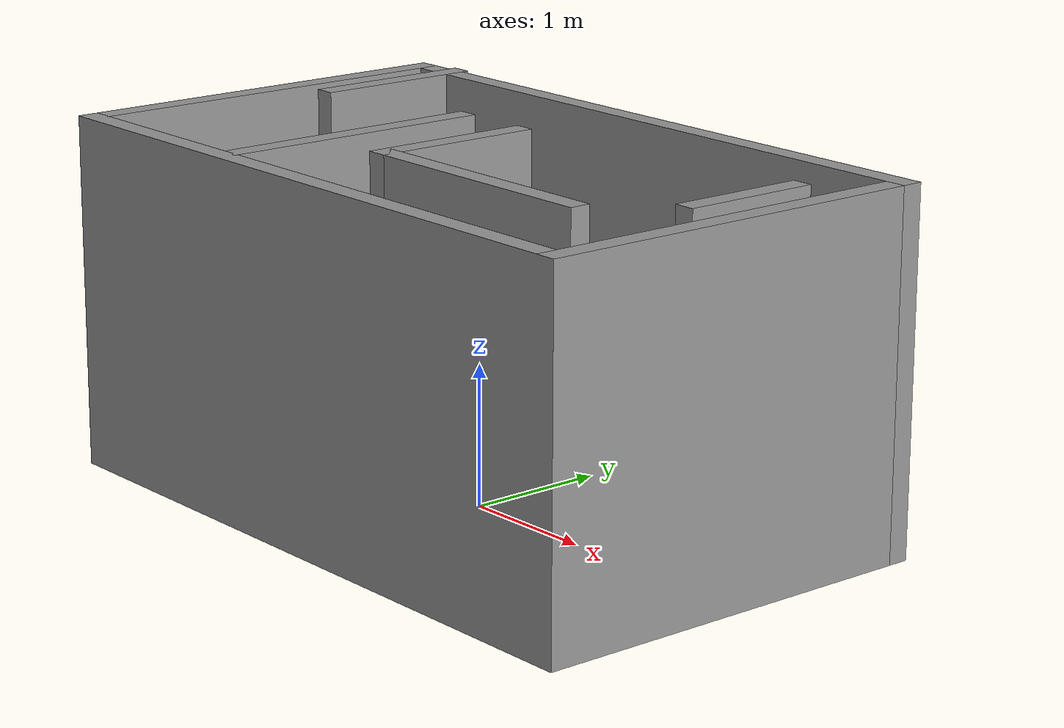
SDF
<?xml version='1.0'?>
<sdf version='1.7'>
  <model name='world_t2'>
    <pose>0.059003 -0.01731 0 0 -0 0</pose>
    <link name='Wall_12'>
      <collision name='Wall_12_Collision'>
        <geometry>
          <box>
            <size>3 0.15 2.5</size>
          </box>
        </geometry>
        <pose>0 0 1.25 0 -0 0</pose>
      </collision>
      <visual name='Wall_12_Visual'>
        <pose>0 0 1.25 0 -0 0</pose>
        <geometry>
          <box>
            <size>3 0.15 2.5</size>
          </box>
        </geometry>
        <material>
          <script>
            <uri>file://media/materials/scripts/gazebo.material</uri>
            <name>Gazebo/Grey</name>
          </script>
          <ambient>1 1 1 1</ambient>
        </material>
        <meta>
          <layer>0</layer>
        </meta>
      </visual>
      <pose>2.425 -0.027138 0 0 -0 1.5708</pose>
    </link>
    <link name='Wall_13'>
      <collision name='Wall_13_Collision'>
        <geometry>
          <box>
            <size>5 0.15 2.5</size>
          </box>
        </geometry>
        <pose>0 0 1.25 0 -0 0</pose>
      </collision>
      <visual name='Wall_13_Visual'>
        <pose>0 0 1.25 0 -0 0</pose>
        <geometry>
          <box>
            <size>5 0.15 2.5</size>
          </box>
        </geometry>
        <material>
          <script>
            <uri>file://media/materials/scripts/gazebo.material</uri>
            <name>Gazebo/Grey</name>
          </script>
          <ambient>1 1 1 1</ambient>
        </material>
        <meta>
          <layer>0</layer>
        </meta>
      </visual>
      <pose>0 1.39786 0 0 -0 3.14159</pose>
    </link>
    <link name='Wall_14'>
      <collision name='Wall_14_Collision'>
        <geometry>
          <box>
            <size>3 0.15 2.5</size>
          </box>
        </geometry>
        <pose>0 0 1.25 0 -0 0</pose>
      </collision>
      <visual name='Wall_14_Visual'>
        <pose>0 0 1.25 0 -0 0</pose>
        <geometry>
          <box>
            <size>3 0.15 2.5</size>
          </box>
        </geometry>
        <material>
          <script>
            <uri>file://media/materials/scripts/gazebo.material</uri>
            <name>Gazebo/Grey</name>
          </script>
          <ambient>1 1 1 1</ambient>
        </material>
        <meta>
          <layer>0</layer>
        </meta>
      </visual>
      <pose>-2.425 -0.027138 0 0 -0 -1.5708</pose>
    </link>
    <link name='Wall_18'>
      <collision name='Wall_18_Collision'>
        <geometry>
          <box>
            <size>1.25 0.15 2.5</size>
          </box>
        </geometry>
        <pose>0 0 1.25 0 -0 0</pose>
      </collision>
      <visual name='Wall_18_Visual'>
        <pose>0 0 1.25 0 -0 0</pose>
        <geometry>
          <box>
            <size>1.25 0.15 2.5</size>
          </box>
        </geometry>
        <material>
          <script>
            <uri>file://media/materials/scripts/gazebo.material</uri>
            <name>Gazebo/Grey</name>
          </script>
          <ambient>1 1 1 1</ambient>
        </material>
        <meta>
          <layer>0</layer>
        </meta>
      </visual>
      <pose>-2.12031 0.902138 0 0 -0 1.5708</pose>
    </link>
    <link name='Wall_22'>
      <collision name='Wall_22_Collision'>
        <geometry>
          <box>
            <size>2 0.15 2.5</size>
          </box>
        </geometry>
        <pose>0 0 1.25 0 -0 0</pose>
      </collision>
      <visual name='Wall_22_Visual'>
        <pose>0 0 1.25 0 -0 0</pose>
        <geometry>
          <box>
            <size>2 0.15 2.5</size>
          </box>
        </geometry>
        <material>
          <script>
            <uri>file://media/materials/scripts/gazebo.material</uri>
            <name>Gazebo/Grey</name>
          </script>
          <ambient>1 1 1 1</ambient>
        </material>
        <meta>
          <layer>0</layer>
        </meta>
      </visual>
      <pose>0.634695 -0.577862 0 0 -0 3.14159</pose>
    </link>
    <link name='Wall_23'>
      <collision name='Wall_23_Collision'>
        <geometry>
          <box>
            <size>1.25 0.15 2.5</size>
          </box>
        </geometry>
        <pose>0 0 1.25 0 -0 0</pose>
      </collision>
      <visual name='Wall_23_Visual'>
        <pose>0 0 1.25 0 -0 0</pose>
        <geometry>
          <box>
            <size>1.25 0.15 2.5</size>
          </box>
        </geometry>
        <material>
          <script>
            <uri>file://media/materials/scripts/gazebo.material</uri>
            <name>Gazebo/Grey</name>
          </script>
          <ambient>1 1 1 1</ambient>
        </material>
        <meta>
          <layer>0</layer>
        </meta>
      </visual>
      <pose>-0.290305 -0.027862 0 0 -0 1.5708</pose>
    </link>
    <link name='Wall_27'>
      <collision name='Wall_27_Collision'>
        <geometry>
          <box>
            <size>2 0.15 2.5</size>
          </box>
        </geometry>
        <pose>0 0 1.25 0 -0 0</pose>
      </collision>
      <visual name='Wall_27_Visual'>
        <pose>0 0 1.25 0 -0 0</pose>
        <geometry>
          <box>
            <size>2 0.15 2.5</size>
          </box>
        </geometry>
        <material>
          <script>
            <uri>file://media/materials/scripts/gazebo.material</uri>
            <name>Gazebo/Grey</name>
          </script>
          <ambient>1 1 1 1</ambient>
        </material>
        <meta>
          <layer>0</layer>
        </meta>
      </visual>
      <pose>-0.890305 -0.402862 0 0 -0 -1.5708</pose>
    </link>
    <link name='Wall_30'>
      <collision name='Wall_30_Collision'>
        <geometry>
          <box>
            <size>1 0.15 2.5</size>
          </box>
        </geometry>
        <pose>0 0 1.25 0 -0 0</pose>
      </collision>
      <visual name='Wall_30_Visual'>
        <pose>0 0 1.25 0 -0 0</pose>
        <geometry>
          <box>
            <size>1 0.15 2.5</size>
          </box>
        </geometry>
        <material>
          <script>
            <uri>file://media/materials/scripts/gazebo.material</uri>
            <name>Gazebo/Grey</name>
          </script>
          <ambient>1 1 1 1</ambient>
        </material>
        <meta>
          <layer>0</layer>
        </meta>
      </visual>
      <pose>2.0397 0.397138 0 0 -0 -1.5708</pose>
    </link>
    <link name='Wall_8'>
      <collision name='Wall_8_Collision'>
        <geometry>
          <box>
            <size>5 0.15 2.5</size>
          </box>
        </geometry>
        <pose>0 0 1.25 0 -0 0</pose>
      </collision>
      <visual name='Wall_8_Visual'>
        <pose>0 0 1.25 0 -0 0</pose>
        <geometry>
          <box>
            <size>5 0.15 2.5</size>
          </box>
        </geometry>
        <material>
          <script>
            <uri>file://media/materials/scripts/gazebo.material</uri>
            <name>Gazebo/Grey</name>
          </script>
          <ambient>1 1 1 1</ambient>
        </material>
        <meta>
          <layer>0</layer>
        </meta>
      </visual>
      <pose>0 -1.45214 0 0 -0 0</pose>
    </link>
    <static>1</static>
  </model>
</sdf>
